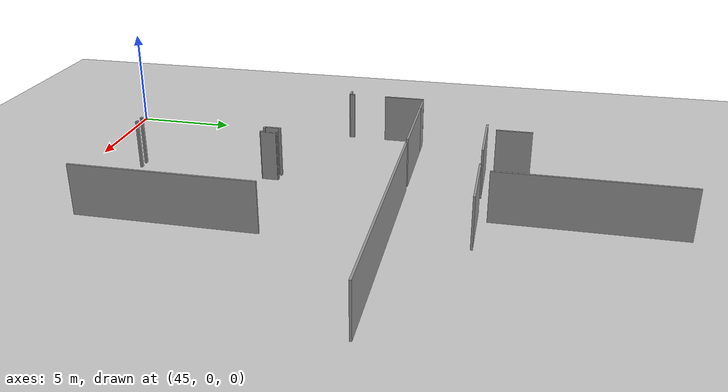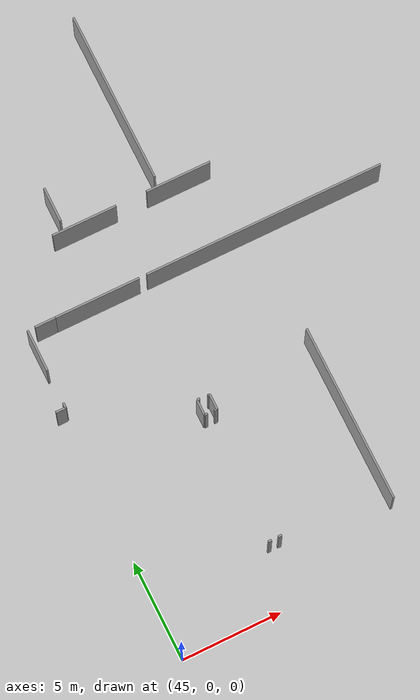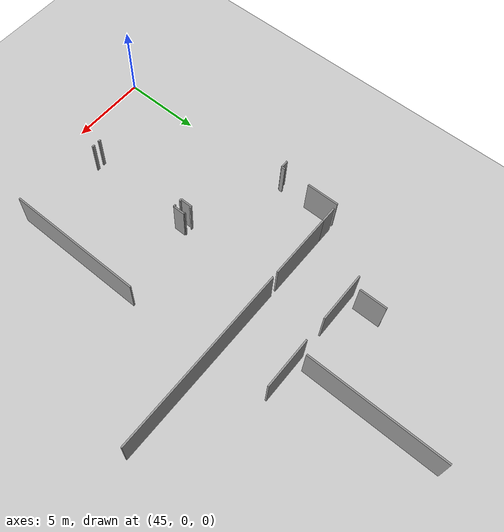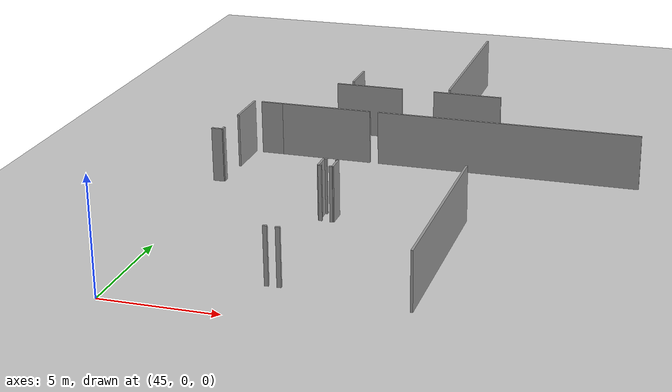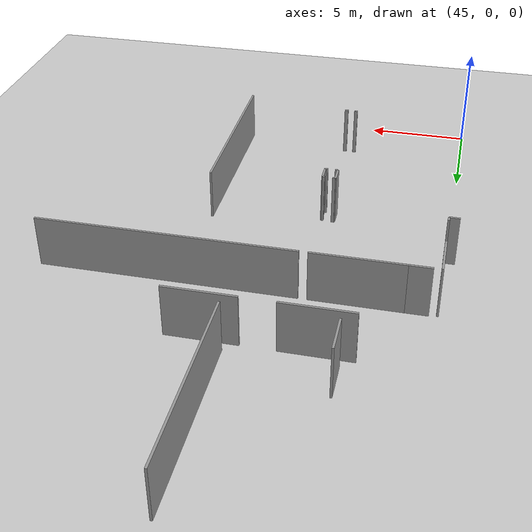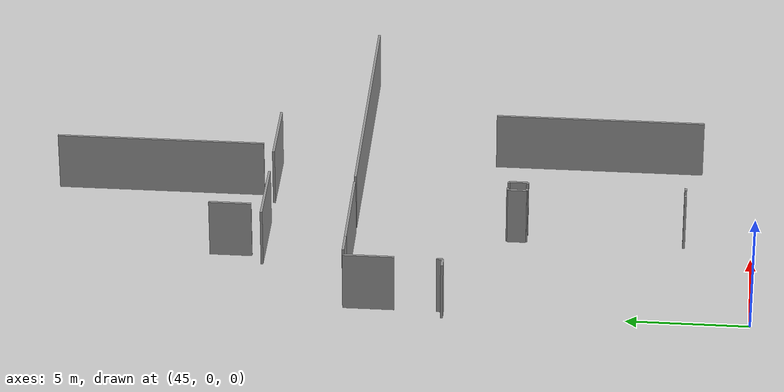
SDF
<sdf version="1.6">
 <world name="default">
  <model name="ground_plane">
   <static>1</static>
   <link name="link">
    <collision name="collision">
     <geometry><plane><normal>0 0 1</normal><size>100 100</size></plane></geometry>
     <surface><friction><ode><mu>100</mu><mu2>50</mu2></ode></friction></surface>
    </collision>
    <visual name="visual">
     <cast_shadows>0</cast_shadows>
     <geometry><plane><normal>0 0 1</normal><size>100 100</size></plane></geometry>
     <material>
      <script><uri>file://media/materials/scripts/gazebo.material</uri><name>Gazebo/Grey</name></script>
     </material>
    </visual>
   </link>
  </model>
  <model name="50010535_PLAN1">
   <static>1</static>
   <link name="Wall_374">
    <collision name="Wall_374_Collision">
     <geometry><box><size>4.24515415843 0.1 2.5</size></box></geometry>
     <pose>2.12257707922 0 1.25 0 0 0</pose>
    </collision>
    <visual name="Wall_374_Visual">
     <pose>2.12257707922 0 1.25 0 0 0</pose>
     <geometry><box><size>4.24515415843 0.1 2.5</size></box></geometry>
     <material>
      <script><uri>file://media/materials/scripts/gazebo.material</uri><name>Gazebo/Grey</name></script>
      <ambient>1 1 1 1</ambient>
     </material>
    </visual>
    <pose>149.176572238 -13.133930103 0 0 0 0.0</pose>
   </link>
   <link name="Wall_375">
    <collision name="Wall_375_Collision">
     <geometry><box><size>0.141547492742 0.1 2.5</size></box></geometry>
     <pose>0.0707737463708 0 1.25 0 0 0</pose>
    </collision>
    <visual name="Wall_375_Visual">
     <pose>0.0707737463708 0 1.25 0 0 0</pose>
     <geometry><box><size>0.141547492742 0.1 2.5</size></box></geometry>
     <material>
      <script><uri>file://media/materials/scripts/gazebo.material</uri><name>Gazebo/Grey</name></script>
      <ambient>1 1 1 1</ambient>
     </material>
    </visual>
    <pose>153.421726397 -19.4598578172 0 0 0 3.14159265359</pose>
   </link>
   <link name="Wall_376">
    <collision name="Wall_376_Collision">
     <geometry><box><size>0.778892397222 0.1 2.5</size></box></geometry>
     <pose>0.389446198611 0 1.25 0 0 0</pose>
    </collision>
    <visual name="Wall_376_Visual">
     <pose>0.389446198611 0 1.25 0 0 0</pose>
     <geometry><box><size>0.778892397222 0.1 2.5</size></box></geometry>
     <material>
      <script><uri>file://media/materials/scripts/gazebo.material</uri><name>Gazebo/Grey</name></script>
      <ambient>1 1 1 1</ambient>
     </material>
    </visual>
    <pose>153.280178904 -19.4598578172 0 0 0 -1.57079632679</pose>
   </link>
   <link name="Wall_377">
    <collision name="Wall_377_Collision">
     <geometry><box><size>0.147138237518 0.1 2.5</size></box></geometry>
     <pose>0.0735691187589 0 1.25 0 0 0</pose>
    </collision>
    <visual name="Wall_377_Visual">
     <pose>0.0735691187589 0 1.25 0 0 0</pose>
     <geometry><box><size>0.147138237518 0.1 2.5</size></box></geometry>
     <material>
      <script><uri>file://media/materials/scripts/gazebo.material</uri><name>Gazebo/Grey</name></script>
      <ambient>1 1 1 1</ambient>
     </material>
    </visual>
    <pose>153.280178904 -20.2387502144 0 0 0 0.0</pose>
   </link>
   <link name="Wall_378">
    <collision name="Wall_378_Collision">
     <geometry><box><size>1.0358205125 0.1 2.5</size></box></geometry>
     <pose>0.517910256249 0 1.25 0 0 0</pose>
    </collision>
    <visual name="Wall_378_Visual">
     <pose>0.517910256249 0 1.25 0 0 0</pose>
     <geometry><box><size>1.0358205125 0.1 2.5</size></box></geometry>
     <material>
      <script><uri>file://media/materials/scripts/gazebo.material</uri><name>Gazebo/Grey</name></script>
      <ambient>1 1 1 1</ambient>
     </material>
    </visual>
    <pose>148.140759706 -13.1379960992 0 0 0 0.00392539691363</pose>
   </link>
   <link name="Wall_394">
    <collision name="Wall_394_Collision">
     <geometry><box><size>0.182969829038 0.1 2.5</size></box></geometry>
     <pose>0.0914849145188 0 1.25 0 0 0</pose>
    </collision>
    <visual name="Wall_394_Visual">
     <pose>0.0914849145188 0 1.25 0 0 0</pose>
     <geometry><box><size>0.182969829038 0.1 2.5</size></box></geometry>
     <material>
      <script><uri>file://media/materials/scripts/gazebo.material</uri><name>Gazebo/Grey</name></script>
      <ambient>1 1 1 1</ambient>
     </material>
    </visual>
    <pose>153.952084776 -26.7463771339 0 0 0 3.14159265359</pose>
   </link>
   <link name="Wall_395">
    <collision name="Wall_395_Collision">
     <geometry><box><size>0.141547492742 0.1 2.5</size></box></geometry>
     <pose>0.0707737463708 0 1.25 0 0 0</pose>
    </collision>
    <visual name="Wall_395_Visual">
     <pose>0.0707737463708 0 1.25 0 0 0</pose>
     <geometry><box><size>0.141547492742 0.1 2.5</size></box></geometry>
     <material>
      <script><uri>file://media/materials/scripts/gazebo.material</uri><name>Gazebo/Grey</name></script>
      <ambient>1 1 1 1</ambient>
     </material>
    </visual>
    <pose>153.769114947 -20.2522188268 0 0 0 0.0</pose>
   </link>
   <link name="Wall_396">
    <collision name="Wall_396_Collision">
     <geometry><box><size>0.768473281958 0.1 2.5</size></box></geometry>
     <pose>0.384236640979 0 1.25 0 0 0</pose>
    </collision>
    <visual name="Wall_396_Visual">
     <pose>0.384236640979 0 1.25 0 0 0</pose>
     <geometry><box><size>0.768473281958 0.1 2.5</size></box></geometry>
     <material>
      <script><uri>file://media/materials/scripts/gazebo.material</uri><name>Gazebo/Grey</name></script>
      <ambient>1 1 1 1</ambient>
     </material>
    </visual>
    <pose>153.91066244 -20.2522188268 0 0 0 1.57079632679</pose>
   </link>
   <link name="Wall_397">
    <collision name="Wall_397_Collision">
     <geometry><box><size>0.106224150747 0.1 2.5</size></box></geometry>
     <pose>0.0531120753734 0 1.25 0 0 0</pose>
    </collision>
    <visual name="Wall_397_Visual">
     <pose>0.0531120753734 0 1.25 0 0 0</pose>
     <geometry><box><size>0.106224150747 0.1 2.5</size></box></geometry>
     <material>
      <script><uri>file://media/materials/scripts/gazebo.material</uri><name>Gazebo/Grey</name></script>
      <ambient>1 1 1 1</ambient>
     </material>
    </visual>
    <pose>153.91066244 -19.4837455449 0 0 0 3.14159265359</pose>
   </link>
   <link name="Wall_398">
    <collision name="Wall_398_Collision">
     <geometry><box><size>12.0162893973 0.1 2.5</size></box></geometry>
     <pose>6.00814469864 0 1.25 0 0 0</pose>
    </collision>
    <visual name="Wall_398_Visual">
     <pose>6.00814469864 0 1.25 0 0 0</pose>
     <geometry><box><size>12.0162893973 0.1 2.5</size></box></geometry>
     <material>
      <script><uri>file://media/materials/scripts/gazebo.material</uri><name>Gazebo/Grey</name></script>
      <ambient>1 1 1 1</ambient>
     </material>
    </visual>
    <pose>153.804438289 -13.1301182315 0 0 0 0.0</pose>
   </link>
   <link name="Wall_401">
    <collision name="Wall_401_Collision">
     <geometry><box><size>8.76959143091 0.1 2.5</size></box></geometry>
     <pose>4.38479571546 0 1.25 0 0 0</pose>
    </collision>
    <visual name="Wall_401_Visual">
     <pose>4.38479571546 0 1.25 0 0 0</pose>
     <geometry><box><size>8.76959143091 0.1 2.5</size></box></geometry>
     <material>
      <script><uri>file://media/materials/scripts/gazebo.material</uri><name>Gazebo/Grey</name></script>
      <ambient>1 1 1 1</ambient>
     </material>
    </visual>
    <pose>159.237625712 -18.6697839304 0 0 0 -1.57079632679</pose>
   </link>
   <link name="Wall_414">
    <collision name="Wall_414_Collision">
     <geometry><box><size>2.0873807996 0.1 2.5</size></box></geometry>
     <pose>1.0436903998 0 1.25 0 0 0</pose>
    </collision>
    <visual name="Wall_414_Visual">
     <pose>1.0436903998 0 1.25 0 0 0</pose>
     <geometry><box><size>2.0873807996 0.1 2.5</size></box></geometry>
     <material>
      <script><uri>file://media/materials/scripts/gazebo.material</uri><name>Gazebo/Grey</name></script>
      <ambient>1 1 1 1</ambient>
     </material>
    </visual>
    <pose>147.776853046 -13.1346924773 0 0 0 -1.57079632679</pose>
   </link>
   <link name="Wall_415">
    <collision name="Wall_415_Collision">
     <geometry><box><size>0.247009269201 0.1 2.5</size></box></geometry>
     <pose>0.1235046346 0 1.25 0 0 0</pose>
    </collision>
    <visual name="Wall_415_Visual">
     <pose>0.1235046346 0 1.25 0 0 0</pose>
     <geometry><box><size>0.247009269201 0.1 2.5</size></box></geometry>
     <material>
      <script><uri>file://media/materials/scripts/gazebo.material</uri><name>Gazebo/Grey</name></script>
      <ambient>1 1 1 1</ambient>
     </material>
    </visual>
    <pose>147.776853046 -16.9186101917 0 0 0 -1.57079632679</pose>
   </link>
   <link name="Wall_416">
    <collision name="Wall_416_Collision">
     <geometry><box><size>0.500625782228 0.1 2.5</size></box></geometry>
     <pose>0.250312891114 0 1.25 0 0 0</pose>
    </collision>
    <visual name="Wall_416_Visual">
     <pose>0.250312891114 0 1.25 0 0 0</pose>
     <geometry><box><size>0.500625782228 0.1 2.5</size></box></geometry>
     <material>
      <script><uri>file://media/materials/scripts/gazebo.material</uri><name>Gazebo/Grey</name></script>
      <ambient>1 1 1 1</ambient>
     </material>
    </visual>
    <pose>147.776853046 -17.1656194609 0 0 0 3.14159265359</pose>
   </link>
   <link name="Wall_419">
    <collision name="Wall_419_Collision">
     <geometry><box><size>0.170771840435 0.1 2.5</size></box></geometry>
     <pose>0.0853859202175 0 1.25 0 0 0</pose>
    </collision>
    <visual name="Wall_419_Visual">
     <pose>0.0853859202175 0 1.25 0 0 0</pose>
     <geometry><box><size>0.170771840435 0.1 2.5</size></box></geometry>
     <material>
      <script><uri>file://media/materials/scripts/gazebo.material</uri><name>Gazebo/Grey</name></script>
      <ambient>1 1 1 1</ambient>
     </material>
    </visual>
    <pose>153.436465633 -26.7506972548 0 0 0 3.14159265359</pose>
   </link>
   <link name="Wall_587">
    <collision name="Wall_587_Collision">
     <geometry><box><size>1.75320673685 0.1 2.5</size></box></geometry>
     <pose>0.876603368424 0 1.25 0 0 0</pose>
    </collision>
    <visual name="Wall_587_Visual">
     <pose>0.876603368424 0 1.25 0 0 0</pose>
     <geometry><box><size>1.75320673685 0.1 2.5</size></box></geometry>
     <material>
      <script><uri>file://media/materials/scripts/gazebo.material</uri><name>Gazebo/Grey</name></script>
      <ambient>1 1 1 1</ambient>
     </material>
    </visual>
    <pose>151.375513809 -9.07682826884 0 0 0 1.57079632679</pose>
   </link>
   <link name="Wall_596">
    <collision name="Wall_596_Collision">
     <geometry><box><size>8.69157512881 0.1 2.5</size></box></geometry>
     <pose>4.3457875644 0 1.25 0 0 0</pose>
    </collision>
    <visual name="Wall_596_Visual">
     <pose>4.3457875644 0 1.25 0 0 0</pose>
     <geometry><box><size>8.69157512881 0.1 2.5</size></box></geometry>
     <material>
      <script><uri>file://media/materials/scripts/gazebo.material</uri><name>Gazebo/Grey</name></script>
      <ambient>1 1 1 1</ambient>
     </material>
    </visual>
    <pose>156.18965331 -9.08089426504 0 0 0 1.57079632679</pose>
   </link>
   <link name="Wall_629">
    <collision name="Wall_629_Collision">
     <geometry><box><size>3.25381345972 0.1 2.5</size></box></geometry>
     <pose>1.62690672986 0 1.25 0 0 0</pose>
    </collision>
    <visual name="Wall_629_Visual">
     <pose>1.62690672986 0 1.25 0 0 0</pose>
     <geometry><box><size>3.25381345972 0.1 2.5</size></box></geometry>
     <material>
      <script><uri>file://media/materials/scripts/gazebo.material</uri><name>Gazebo/Grey</name></script>
      <ambient>1 1 1 1</ambient>
     </material>
    </visual>
    <pose>150.730291036 -9.54975445195 0 0 0 0.0</pose>
   </link>
   <link name="Wall_630">
    <collision name="Wall_630_Collision">
     <geometry><box><size>3.26575732356 0.1 2.5</size></box></geometry>
     <pose>1.63287866178 0 1.25 0 0 0</pose>
    </collision>
    <visual name="Wall_630_Visual">
     <pose>1.63287866178 0 1.25 0 0 0</pose>
     <geometry><box><size>3.26575732356 0.1 2.5</size></box></geometry>
     <material>
      <script><uri>file://media/materials/scripts/gazebo.material</uri><name>Gazebo/Grey</name></script>
      <ambient>1 1 1 1</ambient>
     </material>
    </visual>
    <pose>155.534519672 -9.54975445195 0 0 0 0.0</pose>
   </link>
   <pose>-102.6 29.5103111122 0 0 0 0</pose>
  </model>
 </world>
</sdf>
